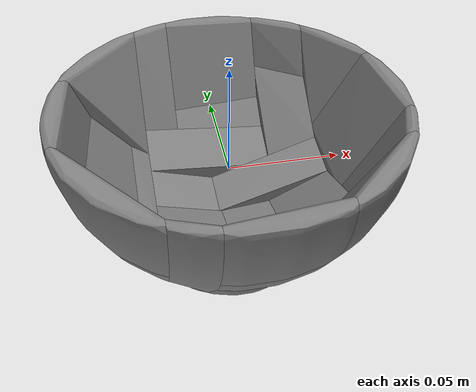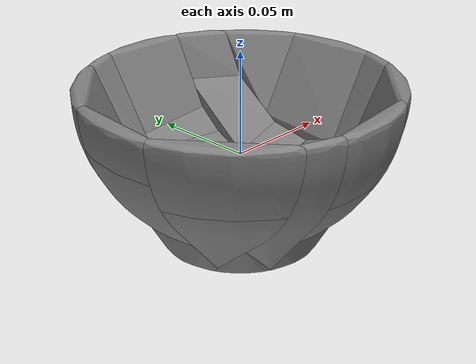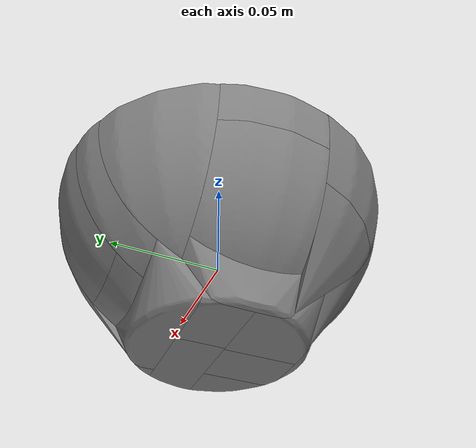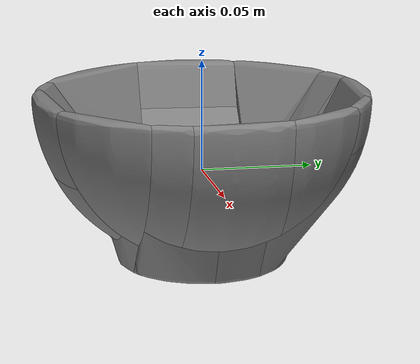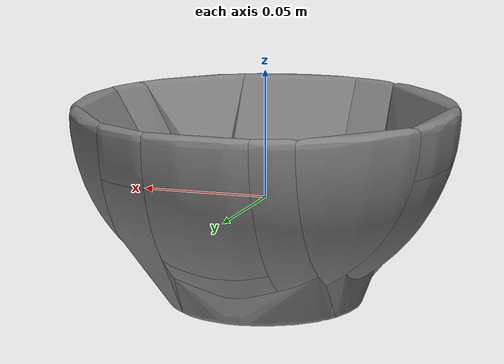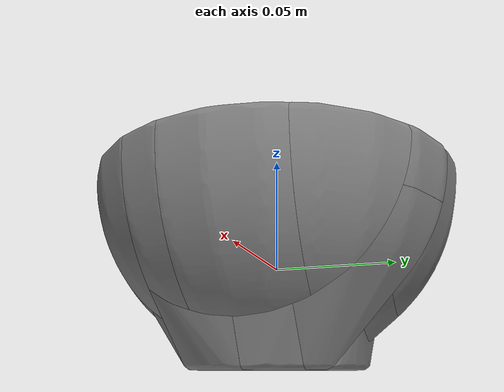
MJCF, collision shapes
<mujoco model="bowl">
  <compiler meshdir="."/>

  <asset>
    <mesh name="bowl" file="bowl.stl"/>
    <mesh name="bowl_collision_hull_000" file="bowl_collision_hull_000.stl"/>
    <mesh name="bowl_collision_hull_001" file="bowl_collision_hull_001.stl"/>
    <mesh name="bowl_collision_hull_002" file="bowl_collision_hull_002.stl"/>
    <mesh name="bowl_collision_hull_003" file="bowl_collision_hull_003.stl"/>
    <mesh name="bowl_collision_hull_004" file="bowl_collision_hull_004.stl"/>
    <mesh name="bowl_collision_hull_005" file="bowl_collision_hull_005.stl"/>
    <mesh name="bowl_collision_hull_006" file="bowl_collision_hull_006.stl"/>
    <mesh name="bowl_collision_hull_007" file="bowl_collision_hull_007.stl"/>
    <mesh name="bowl_collision_hull_008" file="bowl_collision_hull_008.stl"/>
    <mesh name="bowl_collision_hull_009" file="bowl_collision_hull_009.stl"/>
    <mesh name="bowl_collision_hull_010" file="bowl_collision_hull_010.stl"/>
    <mesh name="bowl_collision_hull_011" file="bowl_collision_hull_011.stl"/>
    <mesh name="bowl_collision_hull_012" file="bowl_collision_hull_012.stl"/>
    <mesh name="bowl_collision_hull_013" file="bowl_collision_hull_013.stl"/>
    <mesh name="bowl_collision_hull_014" file="bowl_collision_hull_014.stl"/>
    <mesh name="bowl_collision_hull_015" file="bowl_collision_hull_015.stl"/>
    <mesh name="bowl_collision_hull_016" file="bowl_collision_hull_016.stl"/>
    <mesh name="bowl_collision_hull_017" file="bowl_collision_hull_017.stl"/>
    <mesh name="bowl_collision_hull_018" file="bowl_collision_hull_018.stl"/>
    <mesh name="bowl_collision_hull_019" file="bowl_collision_hull_019.stl"/>
    <mesh name="bowl_collision_hull_020" file="bowl_collision_hull_020.stl"/>
    <mesh name="bowl_collision_hull_021" file="bowl_collision_hull_021.stl"/>
    <mesh name="bowl_collision_hull_022" file="bowl_collision_hull_022.stl"/>
    <mesh name="bowl_collision_hull_023" file="bowl_collision_hull_023.stl"/>
    <mesh name="bowl_collision_hull_024" file="bowl_collision_hull_024.stl"/>
  </asset>

  <worldbody>
    <body name="object">
      <freejoint name="object_joint"/>
      <geom name="object_visual" type="mesh" mesh="bowl"
            contype="0" conaffinity="0" group="2" rgba="0.9 0.9 0.8 1" mass="0"/>
      <geom name="bowl_collision_hull_000_collision" type="mesh" mesh="bowl_collision_hull_000"
            mass="0.0020" condim="6" friction="1.0 0.002 0.002" priority="1"/>
      <geom name="bowl_collision_hull_001_collision" type="mesh" mesh="bowl_collision_hull_001"
            mass="0.0020" condim="6" friction="1.0 0.002 0.002" priority="1"/>
      <geom name="bowl_collision_hull_002_collision" type="mesh" mesh="bowl_collision_hull_002"
            mass="0.0020" condim="6" friction="1.0 0.002 0.002" priority="1"/>
      <geom name="bowl_collision_hull_003_collision" type="mesh" mesh="bowl_collision_hull_003"
            mass="0.0020" condim="6" friction="1.0 0.002 0.002" priority="1"/>
      <geom name="bowl_collision_hull_004_collision" type="mesh" mesh="bowl_collision_hull_004"
            mass="0.0020" condim="6" friction="1.0 0.002 0.002" priority="1"/>
      <geom name="bowl_collision_hull_005_collision" type="mesh" mesh="bowl_collision_hull_005"
            mass="0.0020" condim="6" friction="1.0 0.002 0.002" priority="1"/>
      <geom name="bowl_collision_hull_006_collision" type="mesh" mesh="bowl_collision_hull_006"
            mass="0.0020" condim="6" friction="1.0 0.002 0.002" priority="1"/>
      <geom name="bowl_collision_hull_007_collision" type="mesh" mesh="bowl_collision_hull_007"
            mass="0.0020" condim="6" friction="1.0 0.002 0.002" priority="1"/>
      <geom name="bowl_collision_hull_008_collision" type="mesh" mesh="bowl_collision_hull_008"
            mass="0.0020" condim="6" friction="1.0 0.002 0.002" priority="1"/>
      <geom name="bowl_collision_hull_009_collision" type="mesh" mesh="bowl_collision_hull_009"
            mass="0.0020" condim="6" friction="1.0 0.002 0.002" priority="1"/>
      <geom name="bowl_collision_hull_010_collision" type="mesh" mesh="bowl_collision_hull_010"
            mass="0.0020" condim="6" friction="1.0 0.002 0.002" priority="1"/>
      <geom name="bowl_collision_hull_011_collision" type="mesh" mesh="bowl_collision_hull_011"
            mass="0.0020" condim="6" friction="1.0 0.002 0.002" priority="1"/>
      <geom name="bowl_collision_hull_012_collision" type="mesh" mesh="bowl_collision_hull_012"
            mass="0.0020" condim="6" friction="1.0 0.002 0.002" priority="1"/>
      <geom name="bowl_collision_hull_013_collision" type="mesh" mesh="bowl_collision_hull_013"
            mass="0.0020" condim="6" friction="1.0 0.002 0.002" priority="1"/>
      <geom name="bowl_collision_hull_014_collision" type="mesh" mesh="bowl_collision_hull_014"
            mass="0.0020" condim="6" friction="1.0 0.002 0.002" priority="1"/>
      <geom name="bowl_collision_hull_015_collision" type="mesh" mesh="bowl_collision_hull_015"
            mass="0.0020" condim="6" friction="1.0 0.002 0.002" priority="1"/>
      <geom name="bowl_collision_hull_016_collision" type="mesh" mesh="bowl_collision_hull_016"
            mass="0.0020" condim="6" friction="1.0 0.002 0.002" priority="1"/>
      <geom name="bowl_collision_hull_017_collision" type="mesh" mesh="bowl_collision_hull_017"
            mass="0.0020" condim="6" friction="1.0 0.002 0.002" priority="1"/>
      <geom name="bowl_collision_hull_018_collision" type="mesh" mesh="bowl_collision_hull_018"
            mass="0.0020" condim="6" friction="1.0 0.002 0.002" priority="1"/>
      <geom name="bowl_collision_hull_019_collision" type="mesh" mesh="bowl_collision_hull_019"
            mass="0.0020" condim="6" friction="1.0 0.002 0.002" priority="1"/>
      <geom name="bowl_collision_hull_020_collision" type="mesh" mesh="bowl_collision_hull_020"
            mass="0.0020" condim="6" friction="1.0 0.002 0.002" priority="1"/>
      <geom name="bowl_collision_hull_021_collision" type="mesh" mesh="bowl_collision_hull_021"
            mass="0.0020" condim="6" friction="1.0 0.002 0.002" priority="1"/>
      <geom name="bowl_collision_hull_022_collision" type="mesh" mesh="bowl_collision_hull_022"
            mass="0.0020" condim="6" friction="1.0 0.002 0.002" priority="1"/>
      <geom name="bowl_collision_hull_023_collision" type="mesh" mesh="bowl_collision_hull_023"
            mass="0.0020" condim="6" friction="1.0 0.002 0.002" priority="1"/>
      <geom name="bowl_collision_hull_024_collision" type="mesh" mesh="bowl_collision_hull_024"
            mass="0.0020" condim="6" friction="1.0 0.002 0.002" priority="1"/>
    </body>
  </worldbody>
</mujoco>
